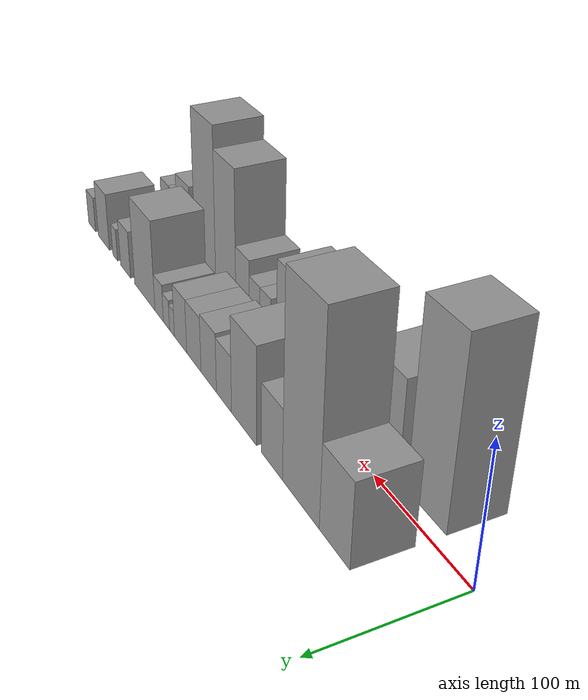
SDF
<sdf version="1.6">
 <world name="default">
  <scene>
   <sky><clouds><speed>12</speed></clouds></sky>
   <ambient>0.4 0.4 0.4 1</ambient>
   <background>0.7 0.7 0.7 1</background>
   <shadows>1</shadows>
  </scene>
  <gravity>0 0 -9.8066</gravity>
  <magnetic_field>6e-06 2.3e-05 -4.2e-05</magnetic_field>
  <physics default="0" name="default_physics" type="ode">
   <ode>
    <solver>
     <type>quick</type>
     <iters>10</iters>
     <sor>1.0</sor>
     <use_dynamic_moi_rescaling>0</use_dynamic_moi_rescaling>
    </solver>
    <constraints>
     <cfm>0</cfm>
     <erp>0.2</erp>
     <contact_max_correcting_vel>100</contact_max_correcting_vel>
     <contact_surface_layer>0.001</contact_surface_layer>
    </constraints>
   </ode>
   <max_step_size>0.004</max_step_size>
   <real_time_factor>1</real_time_factor>
   <real_time_update_rate>250</real_time_update_rate>
  </physics>
  <light name="sun" type="directional">
   <pose>0 0 10 0 0 0</pose>
   <diffuse>0.8 0.8 0.8 1</diffuse>
   <specular>0.2 0.2 0.2 1</specular>
   <attenuation>
    <range>1000</range>
    <constant>0.9</constant>
    <linear>0.01</linear>
    <quadratic>0.001</quadratic>
   </attenuation>
   <direction>-0.5 0.1 -0.9</direction>
  </light>
  <model name="building_1">
   <static>1</static>
   <pose>56.9899 30.0000 0 0.000000 0.000000 1.570796</pose>
   <link name="link">
    <pose>0 0 30.00 0 0 0</pose>
    <collision name="collision"><geometry><box><size>40.0000 33.9798 60.0000</size></box></geometry></collision>
    <visual name="visual">
     <cast_shadows>0</cast_shadows>
     <geometry><box><size>40.0000 33.9798 60.0000</size></box></geometry>
     <material>
      <script>
       <uri>model://grey_wall/materials/scripts</uri>
       <uri>model://grey_wall/materials/textures</uri>
       <name>vrc/grey_wall</name>
      </script>
     </material>
    </visual>
   </link>
  </model>
  <model name="building_2">
   <static>1</static>
   <pose>96.3748 30.0000 0 0.000000 0.000000 1.570796</pose>
   <link name="link">
    <pose>0 0 72.00 0 0 0</pose>
    <collision name="collision"><geometry><box><size>40.0000 44.7900 144.0000</size></box></geometry></collision>
    <visual name="visual">
     <cast_shadows>0</cast_shadows>
     <geometry><box><size>40.0000 44.7900 144.0000</size></box></geometry>
     <material>
      <script>
       <uri>model://grey_wall/materials/scripts</uri>
       <uri>model://grey_wall/materials/textures</uri>
       <name>vrc/grey_wall</name>
      </script>
     </material>
    </visual>
   </link>
  </model>
  <model name="building_3">
   <static>1</static>
   <pose>132.7317 30.0000 0 0.000000 0.000000 1.570796</pose>
   <link name="link">
    <pose>0 0 25.50 0 0 0</pose>
    <collision name="collision"><geometry><box><size>40.0000 27.9239 51.0000</size></box></geometry></collision>
    <visual name="visual">
     <cast_shadows>0</cast_shadows>
     <geometry><box><size>40.0000 27.9239 51.0000</size></box></geometry>
     <material>
      <script>
       <uri>model://grey_wall/materials/scripts</uri>
       <uri>model://grey_wall/materials/textures</uri>
       <name>vrc/grey_wall</name>
      </script>
     </material>
    </visual>
   </link>
  </model>
  <model name="building_4">
   <static>1</static>
   <pose>171.7846 30.0000 0 0.000000 0.000000 1.570796</pose>
   <link name="link">
    <pose>0 0 36.00 0 0 0</pose>
    <collision name="collision"><geometry><box><size>40.0000 36.1819 72.0000</size></box></geometry></collision>
    <visual name="visual">
     <cast_shadows>0</cast_shadows>
     <geometry><box><size>40.0000 36.1819 72.0000</size></box></geometry>
     <material>
      <script>
       <uri>model://grey_wall/materials/scripts</uri>
       <uri>model://grey_wall/materials/textures</uri>
       <name>vrc/grey_wall</name>
      </script>
     </material>
    </visual>
   </link>
  </model>
  <model name="building_5">
   <static>1</static>
   <pose>201.5878 30.0000 0 0.000000 0.000000 1.570796</pose>
   <link name="link">
    <pose>0 0 21.00 0 0 0</pose>
    <collision name="collision"><geometry><box><size>40.0000 23.4246 42.0000</size></box></geometry></collision>
    <visual name="visual">
     <cast_shadows>0</cast_shadows>
     <geometry><box><size>40.0000 23.4246 42.0000</size></box></geometry>
     <material>
      <script>
       <uri>model://grey_wall/materials/scripts</uri>
       <uri>model://grey_wall/materials/textures</uri>
       <name>vrc/grey_wall</name>
      </script>
     </material>
    </visual>
   </link>
  </model>
  <model name="building_6">
   <static>1</static>
   <pose>225.8583 30.0000 0 0.000000 0.000000 1.570796</pose>
   <link name="link">
    <pose>0 0 22.50 0 0 0</pose>
    <collision name="collision"><geometry><box><size>40.0000 25.1162 45.0000</size></box></geometry></collision>
    <visual name="visual">
     <cast_shadows>0</cast_shadows>
     <geometry><box><size>40.0000 25.1162 45.0000</size></box></geometry>
     <material>
      <script>
       <uri>model://grey_wall/materials/scripts</uri>
       <uri>model://grey_wall/materials/textures</uri>
       <name>vrc/grey_wall</name>
      </script>
     </material>
    </visual>
   </link>
  </model>
  <model name="building_7">
   <static>1</static>
   <pose>250.7361 30.0000 0 0.000000 0.000000 1.570796</pose>
   <link name="link">
    <pose>0 0 21.00 0 0 0</pose>
    <collision name="collision"><geometry><box><size>40.0000 24.6395 42.0000</size></box></geometry></collision>
    <visual name="visual">
     <cast_shadows>0</cast_shadows>
     <geometry><box><size>40.0000 24.6395 42.0000</size></box></geometry>
     <material>
      <script>
       <uri>model://grey_wall/materials/scripts</uri>
       <uri>model://grey_wall/materials/textures</uri>
       <name>vrc/grey_wall</name>
      </script>
     </material>
    </visual>
   </link>
  </model>
  <model name="building_8">
   <static>1</static>
   <pose>274.1324 30.0000 0 0.000000 0.000000 1.570796</pose>
   <link name="link">
    <pose>0 0 21.00 0 0 0</pose>
    <collision name="collision"><geometry><box><size>40.0000 22.1531 42.0000</size></box></geometry></collision>
    <visual name="visual">
     <cast_shadows>0</cast_shadows>
     <geometry><box><size>40.0000 22.1531 42.0000</size></box></geometry>
     <material>
      <script>
       <uri>model://grey_wall/materials/scripts</uri>
       <uri>model://grey_wall/materials/textures</uri>
       <name>vrc/grey_wall</name>
      </script>
     </material>
    </visual>
   </link>
  </model>
  <model name="building_9">
   <static>1</static>
   <pose>289.7106 30.0000 0 0.000000 0.000000 1.570796</pose>
   <link name="link">
    <pose>0 0 10.50 0 0 0</pose>
    <collision name="collision"><geometry><box><size>40.0000 9.0032 21.0000</size></box></geometry></collision>
    <visual name="visual">
     <cast_shadows>0</cast_shadows>
     <geometry><box><size>40.0000 9.0032 21.0000</size></box></geometry>
     <material>
      <script>
       <uri>model://grey_wall/materials/scripts</uri>
       <uri>model://grey_wall/materials/textures</uri>
       <name>vrc/grey_wall</name>
      </script>
     </material>
    </visual>
   </link>
  </model>
  <model name="building_10">
   <static>1</static>
   <pose>300.1160 30.0000 0 0.000000 0.000000 1.570796</pose>
   <link name="link">
    <pose>0 0 12.00 0 0 0</pose>
    <collision name="collision"><geometry><box><size>40.0000 11.8075 24.0000</size></box></geometry></collision>
    <visual name="visual">
     <cast_shadows>0</cast_shadows>
     <geometry><box><size>40.0000 11.8075 24.0000</size></box></geometry>
     <material>
      <script>
       <uri>model://grey_wall/materials/scripts</uri>
       <uri>model://grey_wall/materials/textures</uri>
       <name>vrc/grey_wall</name>
      </script>
     </material>
    </visual>
   </link>
  </model>
  <model name="building_11">
   <static>1</static>
   <pose>314.2393 30.0000 0 0.000000 0.000000 1.570796</pose>
   <link name="link">
    <pose>0 0 15.00 0 0 0</pose>
    <collision name="collision"><geometry><box><size>40.0000 16.4392 30.0000</size></box></geometry></collision>
    <visual name="visual">
     <cast_shadows>0</cast_shadows>
     <geometry><box><size>40.0000 16.4392 30.0000</size></box></geometry>
     <material>
      <script>
       <uri>model://grey_wall/materials/scripts</uri>
       <uri>model://grey_wall/materials/textures</uri>
       <name>vrc/grey_wall</name>
      </script>
     </material>
    </visual>
   </link>
  </model>
  <model name="building_12">
   <static>1</static>
   <pose>343.3888 30.0000 0 0.000000 0.000000 1.570796</pose>
   <link name="link">
    <pose>0 0 36.00 0 0 0</pose>
    <collision name="collision"><geometry><box><size>40.0000 41.8596 72.0000</size></box></geometry></collision>
    <visual name="visual">
     <cast_shadows>0</cast_shadows>
     <geometry><box><size>40.0000 41.8596 72.0000</size></box></geometry>
     <material>
      <script>
       <uri>model://grey_wall/materials/scripts</uri>
       <uri>model://grey_wall/materials/textures</uri>
       <name>vrc/grey_wall</name>
      </script>
     </material>
    </visual>
   </link>
  </model>
  <model name="building_13">
   <static>1</static>
   <pose>384.3502 30.0000 0 0.000000 0.000000 1.570796</pose>
   <link name="link">
    <pose>0 0 19.50 0 0 0</pose>
    <collision name="collision"><geometry><box><size>40.0000 22.0633 39.0000</size></box></geometry></collision>
    <visual name="visual">
     <cast_shadows>0</cast_shadows>
     <geometry><box><size>40.0000 22.0633 39.0000</size></box></geometry>
     <material>
      <script>
       <uri>model://grey_wall/materials/scripts</uri>
       <uri>model://grey_wall/materials/textures</uri>
       <name>vrc/grey_wall</name>
      </script>
     </material>
    </visual>
   </link>
  </model>
  <model name="building_14">
   <static>1</static>
   <pose>407.8073 30.0000 0 0.000000 0.000000 1.570796</pose>
   <link name="link">
    <pose>0 0 13.50 0 0 0</pose>
    <collision name="collision"><geometry><box><size>40.0000 10.8509 27.0000</size></box></geometry></collision>
    <visual name="visual">
     <cast_shadows>0</cast_shadows>
     <geometry><box><size>40.0000 10.8509 27.0000</size></box></geometry>
     <material>
      <script>
       <uri>model://grey_wall/materials/scripts</uri>
       <uri>model://grey_wall/materials/textures</uri>
       <name>vrc/grey_wall</name>
      </script>
     </material>
    </visual>
   </link>
  </model>
  <model name="building_15">
   <static>1</static>
   <pose>434.7490 30.0000 0 0.000000 0.000000 1.570796</pose>
   <link name="link">
    <pose>0 0 24.00 0 0 0</pose>
    <collision name="collision"><geometry><box><size>40.0000 27.0325 48.0000</size></box></geometry></collision>
    <visual name="visual">
     <cast_shadows>0</cast_shadows>
     <geometry><box><size>40.0000 27.0325 48.0000</size></box></geometry>
     <material>
      <script>
       <uri>model://grey_wall/materials/scripts</uri>
       <uri>model://grey_wall/materials/textures</uri>
       <name>vrc/grey_wall</name>
      </script>
     </material>
    </visual>
   </link>
  </model>
  <model name="building_16">
   <static>1</static>
   <pose>464.0350 30.0000 0 0.000000 0.000000 1.570796</pose>
   <link name="link">
    <pose>0 0 15.00 0 0 0</pose>
    <collision name="collision"><geometry><box><size>40.0000 17.5395 30.0000</size></box></geometry></collision>
    <visual name="visual">
     <cast_shadows>0</cast_shadows>
     <geometry><box><size>40.0000 17.5395 30.0000</size></box></geometry>
     <material>
      <script>
       <uri>model://grey_wall/materials/scripts</uri>
       <uri>model://grey_wall/materials/textures</uri>
       <name>vrc/grey_wall</name>
      </script>
     </material>
    </visual>
   </link>
  </model>
  <model name="building_17">
   <static>1</static>
   <pose>60.2408 -30.0000 0 0.000000 0.000000 1.570796</pose>
   <link name="link">
    <pose>0 0 66.00 0 0 0</pose>
    <collision name="collision"><geometry><box><size>40.0000 40.4815 132.0000</size></box></geometry></collision>
    <visual name="visual">
     <cast_shadows>0</cast_shadows>
     <geometry><box><size>40.0000 40.4815 132.0000</size></box></geometry>
     <material>
      <script>
       <uri>model://grey_wall/materials/scripts</uri>
       <uri>model://grey_wall/materials/textures</uri>
       <name>vrc/grey_wall</name>
      </script>
     </material>
    </visual>
   </link>
  </model>
  <model name="building_18">
   <static>1</static>
   <pose>110.5925 -30.0000 0 0.000000 0.000000 1.570796</pose>
   <link name="link">
    <pose>0 0 36.00 0 0 0</pose>
    <collision name="collision"><geometry><box><size>40.0000 42.2219 72.0000</size></box></geometry></collision>
    <visual name="visual">
     <cast_shadows>0</cast_shadows>
     <geometry><box><size>40.0000 42.2219 72.0000</size></box></geometry>
     <material>
      <script>
       <uri>model://grey_wall/materials/scripts</uri>
       <uri>model://grey_wall/materials/textures</uri>
       <name>vrc/grey_wall</name>
      </script>
     </material>
    </visual>
   </link>
  </model>
  <model name="building_19">
   <static>1</static>
   <pose>149.3509 -30.0000 0 0.000000 0.000000 1.570796</pose>
   <link name="link">
    <pose>0 0 19.50 0 0 0</pose>
    <collision name="collision"><geometry><box><size>40.0000 23.2949 39.0000</size></box></geometry></collision>
    <visual name="visual">
     <cast_shadows>0</cast_shadows>
     <geometry><box><size>40.0000 23.2949 39.0000</size></box></geometry>
     <material>
      <script>
       <uri>model://grey_wall/materials/scripts</uri>
       <uri>model://grey_wall/materials/textures</uri>
       <name>vrc/grey_wall</name>
      </script>
     </material>
    </visual>
   </link>
  </model>
  <model name="building_20">
   <static>1</static>
   <pose>172.4431 -30.0000 0 0.000000 0.000000 1.570796</pose>
   <link name="link">
    <pose>0 0 22.50 0 0 0</pose>
    <collision name="collision"><geometry><box><size>40.0000 22.8895 45.0000</size></box></geometry></collision>
    <visual name="visual">
     <cast_shadows>0</cast_shadows>
     <geometry><box><size>40.0000 22.8895 45.0000</size></box></geometry>
     <material>
      <script>
       <uri>model://grey_wall/materials/scripts</uri>
       <uri>model://grey_wall/materials/textures</uri>
       <name>vrc/grey_wall</name>
      </script>
     </material>
    </visual>
   </link>
  </model>
  <model name="building_21">
   <static>1</static>
   <pose>199.0537 -30.0000 0 0.000000 0.000000 1.570796</pose>
   <link name="link">
    <pose>0 0 18.00 0 0 0</pose>
    <collision name="collision"><geometry><box><size>40.0000 20.3315 36.0000</size></box></geometry></collision>
    <visual name="visual">
     <cast_shadows>0</cast_shadows>
     <geometry><box><size>40.0000 20.3315 36.0000</size></box></geometry>
     <material>
      <script>
       <uri>model://grey_wall/materials/scripts</uri>
       <uri>model://grey_wall/materials/textures</uri>
       <name>vrc/grey_wall</name>
      </script>
     </material>
    </visual>
   </link>
  </model>
  <model name="building_22">
   <static>1</static>
   <pose>228.6723 -30.0000 0 0.000000 0.000000 1.570796</pose>
   <link name="link">
    <pose>0 0 33.00 0 0 0</pose>
    <collision name="collision"><geometry><box><size>40.0000 38.9058 66.0000</size></box></geometry></collision>
    <visual name="visual">
     <cast_shadows>0</cast_shadows>
     <geometry><box><size>40.0000 38.9058 66.0000</size></box></geometry>
     <material>
      <script>
       <uri>model://grey_wall/materials/scripts</uri>
       <uri>model://grey_wall/materials/textures</uri>
       <name>vrc/grey_wall</name>
      </script>
     </material>
    </visual>
   </link>
  </model>
  <model name="building_23">
   <static>1</static>
   <pose>252.4351 -30.0000 0 0.000000 0.000000 1.570796</pose>
   <link name="link">
    <pose>0 0 10.50 0 0 0</pose>
    <collision name="collision"><geometry><box><size>40.0000 8.6197 21.0000</size></box></geometry></collision>
    <visual name="visual">
     <cast_shadows>0</cast_shadows>
     <geometry><box><size>40.0000 8.6197 21.0000</size></box></geometry>
     <material>
      <script>
       <uri>model://grey_wall/materials/scripts</uri>
       <uri>model://grey_wall/materials/textures</uri>
       <name>vrc/grey_wall</name>
      </script>
     </material>
    </visual>
   </link>
  </model>
  <model name="building_24">
   <static>1</static>
   <pose>265.4356 -30.0000 0 0.000000 0.000000 1.570796</pose>
   <link name="link">
    <pose>0 0 15.00 0 0 0</pose>
    <collision name="collision"><geometry><box><size>40.0000 17.3813 30.0000</size></box></geometry></collision>
    <visual name="visual">
     <cast_shadows>0</cast_shadows>
     <geometry><box><size>40.0000 17.3813 30.0000</size></box></geometry>
     <material>
      <script>
       <uri>model://grey_wall/materials/scripts</uri>
       <uri>model://grey_wall/materials/textures</uri>
       <name>vrc/grey_wall</name>
      </script>
     </material>
    </visual>
   </link>
  </model>
  <model name="building_25">
   <static>1</static>
   <pose>283.0175 -30.0000 0 0.000000 0.000000 1.570796</pose>
   <link name="link">
    <pose>0 0 15.00 0 0 0</pose>
    <collision name="collision"><geometry><box><size>40.0000 17.7824 30.0000</size></box></geometry></collision>
    <visual name="visual">
     <cast_shadows>0</cast_shadows>
     <geometry><box><size>40.0000 17.7824 30.0000</size></box></geometry>
     <material>
      <script>
       <uri>model://grey_wall/materials/scripts</uri>
       <uri>model://grey_wall/materials/textures</uri>
       <name>vrc/grey_wall</name>
      </script>
     </material>
    </visual>
   </link>
  </model>
  <model name="building_26">
   <static>1</static>
   <pose>303.5092 -30.0000 0 0.000000 0.000000 1.570796</pose>
   <link name="link">
    <pose>0 0 21.00 0 0 0</pose>
    <collision name="collision"><geometry><box><size>40.0000 23.2012 42.0000</size></box></geometry></collision>
    <visual name="visual">
     <cast_shadows>0</cast_shadows>
     <geometry><box><size>40.0000 23.2012 42.0000</size></box></geometry>
     <material>
      <script>
       <uri>model://grey_wall/materials/scripts</uri>
       <uri>model://grey_wall/materials/textures</uri>
       <name>vrc/grey_wall</name>
      </script>
     </material>
    </visual>
   </link>
  </model>
  <model name="building_27">
   <static>1</static>
   <pose>333.3617 -30.0000 0 0.000000 0.000000 1.570796</pose>
   <link name="link">
    <pose>0 0 51.00 0 0 0</pose>
    <collision name="collision"><geometry><box><size>40.0000 36.5038 102.0000</size></box></geometry></collision>
    <visual name="visual">
     <cast_shadows>0</cast_shadows>
     <geometry><box><size>40.0000 36.5038 102.0000</size></box></geometry>
     <material>
      <script>
       <uri>model://grey_wall/materials/scripts</uri>
       <uri>model://grey_wall/materials/textures</uri>
       <name>vrc/grey_wall</name>
      </script>
     </material>
    </visual>
   </link>
  </model>
  <model name="building_28">
   <static>1</static>
   <pose>371.5924 -30.0000 0 0.000000 0.000000 1.570796</pose>
   <link name="link">
    <pose>0 0 60.00 0 0 0</pose>
    <collision name="collision"><geometry><box><size>40.0000 39.9575 120.0000</size></box></geometry></collision>
    <visual name="visual">
     <cast_shadows>0</cast_shadows>
     <geometry><box><size>40.0000 39.9575 120.0000</size></box></geometry>
     <material>
      <script>
       <uri>model://grey_wall/materials/scripts</uri>
       <uri>model://grey_wall/materials/textures</uri>
       <name>vrc/grey_wall</name>
      </script>
     </material>
    </visual>
   </link>
  </model>
  <model name="building_29">
   <static>1</static>
   <pose>395.9898 -30.0000 0 0.000000 0.000000 1.570796</pose>
   <link name="link">
    <pose>0 0 10.50 0 0 0</pose>
    <collision name="collision"><geometry><box><size>40.0000 8.8374 21.0000</size></box></geometry></collision>
    <visual name="visual">
     <cast_shadows>0</cast_shadows>
     <geometry><box><size>40.0000 8.8374 21.0000</size></box></geometry>
     <material>
      <script>
       <uri>model://grey_wall/materials/scripts</uri>
       <uri>model://grey_wall/materials/textures</uri>
       <name>vrc/grey_wall</name>
      </script>
     </material>
    </visual>
   </link>
  </model>
  <model name="building_30">
   <static>1</static>
   <pose>414.1395 -30.0000 0 0.000000 0.000000 1.570796</pose>
   <link name="link">
    <pose>0 0 25.50 0 0 0</pose>
    <collision name="collision"><geometry><box><size>40.0000 27.4620 51.0000</size></box></geometry></collision>
    <visual name="visual">
     <cast_shadows>0</cast_shadows>
     <geometry><box><size>40.0000 27.4620 51.0000</size></box></geometry>
     <material>
      <script>
       <uri>model://grey_wall/materials/scripts</uri>
       <uri>model://grey_wall/materials/textures</uri>
       <name>vrc/grey_wall</name>
      </script>
     </material>
    </visual>
   </link>
  </model>
  <model name="building_31">
   <static>1</static>
   <pose>436.4827 -30.0000 0 0.000000 0.000000 1.570796</pose>
   <link name="link">
    <pose>0 0 16.50 0 0 0</pose>
    <collision name="collision"><geometry><box><size>40.0000 17.2243 33.0000</size></box></geometry></collision>
    <visual name="visual">
     <cast_shadows>0</cast_shadows>
     <geometry><box><size>40.0000 17.2243 33.0000</size></box></geometry>
     <material>
      <script>
       <uri>model://grey_wall/materials/scripts</uri>
       <uri>model://grey_wall/materials/textures</uri>
       <name>vrc/grey_wall</name>
      </script>
     </material>
    </visual>
   </link>
  </model>
  <model name="building_32">
   <static>1</static>
   <pose>453.9302 -30.0000 0 0.000000 0.000000 1.570796</pose>
   <link name="link">
    <pose>0 0 16.50 0 0 0</pose>
    <collision name="collision"><geometry><box><size>40.0000 17.6707 33.0000</size></box></geometry></collision>
    <visual name="visual">
     <cast_shadows>0</cast_shadows>
     <geometry><box><size>40.0000 17.6707 33.0000</size></box></geometry>
     <material>
      <script>
       <uri>model://grey_wall/materials/scripts</uri>
       <uri>model://grey_wall/materials/textures</uri>
       <name>vrc/grey_wall</name>
      </script>
     </material>
    </visual>
   </link>
  </model>
 </world>
</sdf>
